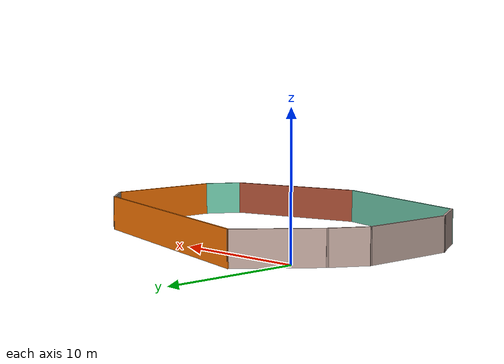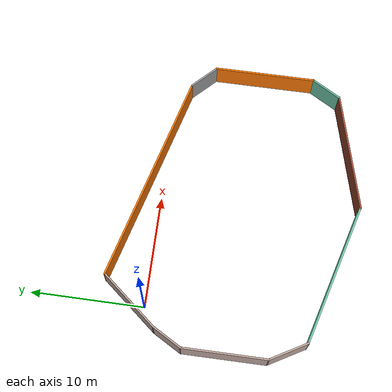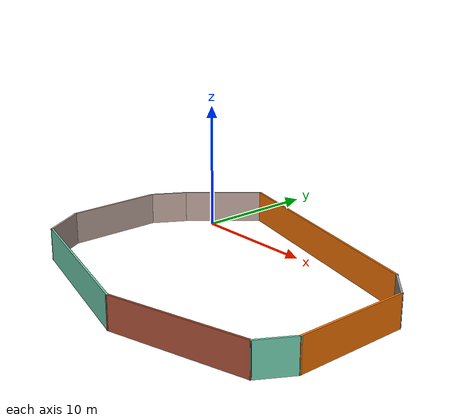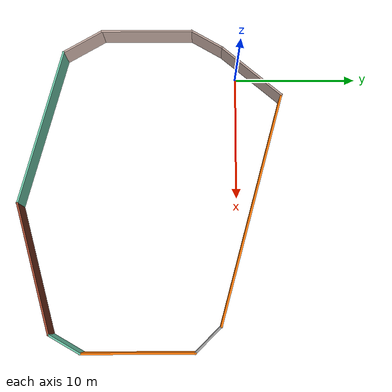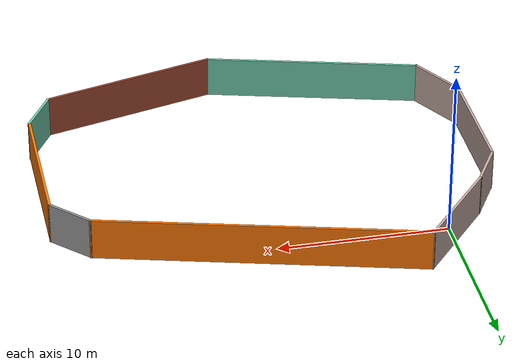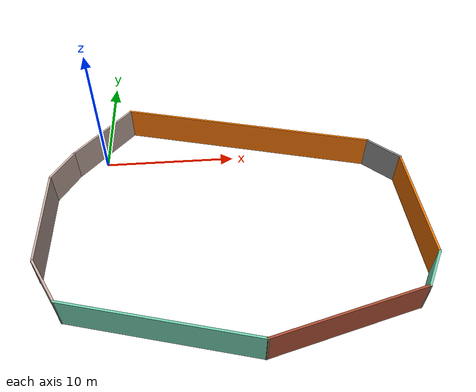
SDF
<?xml version='1.0'?>
<sdf version='1.6'>
  <model name='mybuilding'>
    <pose frame=''>9.45479 -6.88461 0 0 -0 0</pose>
    <link name='Wall_0'>
      <collision name='Wall_0_Collision'>
        <geometry>
          <box>
            <size>3 0.15 2.5</size>
          </box>
        </geometry>
        <pose frame=''>0 0 1.25 0 -0 0</pose>
      </collision>
      <visual name='Wall_0_Visual'>
        <pose frame=''>0 0 1.25 0 -0 0</pose>
        <geometry>
          <box>
            <size>3 0.15 2.5</size>
          </box>
        </geometry>
        <material>
          <script>
            <uri>file://media/materials/scripts/gazebo.material</uri>
            <name>Gazebo/Grey</name>
          </script>
          <ambient>0.760784 0.662745 0.627451 1</ambient>
        </material>
        <meta>
          <layer>0</layer>
        </meta>
      </visual>
      <pose frame=''>-12.2273 4.51053 0 0 0 -2.0944</pose>
    </link>
    <link name='Wall_1'>
      <collision name='Wall_1_Collision'>
        <geometry>
          <box>
            <size>7.5 0.15 2.5</size>
          </box>
        </geometry>
        <pose frame=''>0 0 1.25 0 -0 0</pose>
      </collision>
      <visual name='Wall_1_Visual'>
        <pose frame=''>0 0 1.25 0 -0 0</pose>
        <geometry>
          <box>
            <size>7.5 0.15 2.5</size>
          </box>
        </geometry>
        <material>
          <script>
            <uri>file://media/materials/scripts/gazebo.material</uri>
            <name>Gazebo/Grey</name>
          </script>
          <ambient>0.760784 0.662745 0.627451 1</ambient>
        </material>
        <meta>
          <layer>0</layer>
        </meta>
      </visual>
      <pose frame=''>-12.9398 -0.39856 0 0 0 -1.5708</pose>
    </link>
    <link name='Wall_2'>
      <collision name='Wall_2_Collision'>
        <geometry>
          <box>
            <size>3.75 0.15 2.5</size>
          </box>
        </geometry>
        <pose frame=''>0 0 1.25 0 -0 0</pose>
      </collision>
      <visual name='Wall_2_Visual'>
        <pose frame=''>0 0 1.25 0 -0 0</pose>
        <geometry>
          <box>
            <size>3.75 0.15 2.5</size>
          </box>
        </geometry>
        <material>
          <script>
            <uri>file://media/materials/scripts/gazebo.material</uri>
            <name>Gazebo/Grey</name>
          </script>
          <ambient>0.760784 0.662745 0.627451 1</ambient>
        </material>
        <meta>
          <layer>0</layer>
        </meta>
      </visual>
      <pose frame=''>-12.0398 -5.63241 0 0 0 -1.0472</pose>
    </link>
    <link name='Wall_3'>
      <collision name='Wall_3_Collision'>
        <geometry>
          <box>
            <size>13 0.15 2.5</size>
          </box>
        </geometry>
        <pose frame=''>0 0 1.25 0 -0 0</pose>
      </collision>
      <visual name='Wall_3_Visual'>
        <pose frame=''>0 0 1.25 0 -0 0</pose>
        <geometry>
          <box>
            <size>13 0.15 2.5</size>
          </box>
        </geometry>
        <material>
          <script>
            <uri>file://media/materials/scripts/gazebo.material</uri>
            <name>Gazebo/Grey</name>
          </script>
          <ambient>0.435294 0.796078 0.67451 1</ambient>
        </material>
        <meta>
          <layer>0</layer>
        </meta>
      </visual>
      <pose frame=''>-4.93371 -8.85416 0 0 0 -0.261799</pose>
    </link>
    <link name='Wall_4'>
      <collision name='Wall_4_Collision'>
        <geometry>
          <box>
            <size>10.75 0.15 2.5</size>
          </box>
        </geometry>
        <pose frame=''>0 0 1.25 0 -0 0</pose>
      </collision>
      <visual name='Wall_4_Visual'>
        <pose frame=''>0 0 1.25 0 -0 0</pose>
        <geometry>
          <box>
            <size>10.75 0.15 2.5</size>
          </box>
        </geometry>
        <material>
          <script>
            <uri>file://media/materials/scripts/gazebo.material</uri>
            <name>Gazebo/Bricks</name>
          </script>
          <ambient>1 0.764706 0.305882 1</ambient>
        </material>
        <meta>
          <layer>0</layer>
        </meta>
      </visual>
      <pose frame=''>6.39177 -9.14533 0 0 -0 0.261799</pose>
    </link>
    <link name='Wall_5'>
      <collision name='Wall_5_Collision'>
        <geometry>
          <box>
            <size>3 0.15 2.5</size>
          </box>
        </geometry>
        <pose frame=''>0 0 1.25 0 -0 0</pose>
      </collision>
      <visual name='Wall_5_Visual'>
        <pose frame=''>0 0 1.25 0 -0 0</pose>
        <geometry>
          <box>
            <size>3 0.15 2.5</size>
          </box>
        </geometry>
        <material>
          <script>
            <uri>file://media/materials/scripts/gazebo.material</uri>
            <name>Gazebo/Grey</name>
          </script>
          <ambient>0.435294 0.796078 0.67451 1</ambient>
        </material>
        <meta>
          <layer>0</layer>
        </meta>
      </visual>
      <pose frame=''>12.2237 -6.53951 0 0 -0 1.0472</pose>
    </link>
    <link name='Wall_6'>
      <collision name='Wall_6_Collision'>
        <geometry>
          <box>
            <size>9 0.15 2.5</size>
          </box>
        </geometry>
        <pose frame=''>0 0 1.25 0 -0 0</pose>
      </collision>
      <visual name='Wall_6_Visual'>
        <pose frame=''>0 0 1.25 0 -0 0</pose>
        <geometry>
          <box>
            <size>9 0.15 2.5</size>
          </box>
        </geometry>
        <material>
          <script>
            <uri>file://media/materials/scripts/gazebo.material</uri>
            <name>Gazebo/Grey</name>
          </script>
          <ambient>0.996078 0.47451 0.0196078 1</ambient>
        </material>
        <meta>
          <layer>0</layer>
        </meta>
      </visual>
      <pose frame=''>12.9362 -0.880422 0 0 -0 1.5708</pose>
    </link>
    <link name='Wall_7'>
      <collision name='Wall_7_Collision'>
        <geometry>
          <box>
            <size>3 0.15 2.5</size>
          </box>
        </geometry>
        <pose frame=''>0 0 1.25 0 -0 0</pose>
      </collision>
      <visual name='Wall_7_Visual'>
        <pose frame=''>0 0 1.25 0 -0 0</pose>
        <geometry>
          <box>
            <size>3 0.15 2.5</size>
          </box>
        </geometry>
        <material>
          <script>
            <uri>file://media/materials/scripts/gazebo.material</uri>
            <name>Gazebo/Grey</name>
          </script>
          <ambient>1 1 1 1</ambient>
        </material>
        <meta>
          <layer>0</layer>
        </meta>
      </visual>
      <pose frame=''>11.9285 4.5522 0 0 -0 2.35619</pose>
    </link>
    <link name='Wall_8'>
      <collision name='Wall_8_Collision'>
        <geometry>
          <box>
            <size>19.25 0.15 2.5</size>
          </box>
        </geometry>
        <pose frame=''>0 0 1.25 0 -0 0</pose>
      </collision>
      <visual name='Wall_8_Visual'>
        <pose frame=''>0 0 1.25 0 -0 0</pose>
        <geometry>
          <box>
            <size>19.25 0.15 2.5</size>
          </box>
        </geometry>
        <material>
          <script>
            <uri>file://media/materials/scripts/gazebo.material</uri>
            <name>Gazebo/Grey</name>
          </script>
          <ambient>0.996078 0.47451 0.0196078 1</ambient>
        </material>
        <meta>
          <layer>0</layer>
        </meta>
      </visual>
      <pose frame=''>1.69633 8.03155 0 0 -0 2.87979</pose>
    </link>
    <link name='Wall_9'>
      <collision name='Wall_9_Collision'>
        <geometry>
          <box>
            <size>6.35784 0.15 2.5</size>
          </box>
        </geometry>
        <pose frame=''>0 0 1.25 0 -0 0</pose>
      </collision>
      <visual name='Wall_9_Visual'>
        <pose frame=''>0 0 1.25 0 -0 0</pose>
        <geometry>
          <box>
            <size>6.35784 0.15 2.5</size>
          </box>
        </geometry>
        <material>
          <script>
            <uri>file://media/materials/scripts/gazebo.material</uri>
            <name>Gazebo/Grey</name>
          </script>
          <ambient>0.760784 0.662745 0.627451 1</ambient>
        </material>
        <meta>
          <layer>0</layer>
        </meta>
      </visual>
      <pose frame=''>-9.52153 8.12394 0 0 0 -2.26813</pose>
    </link>
    <static>1</static>
  </model>
</sdf>
